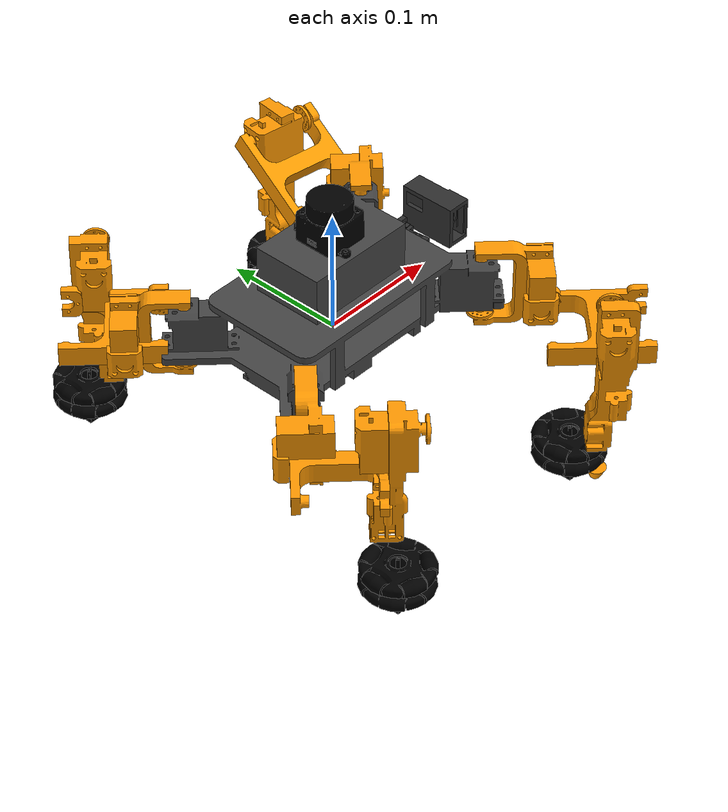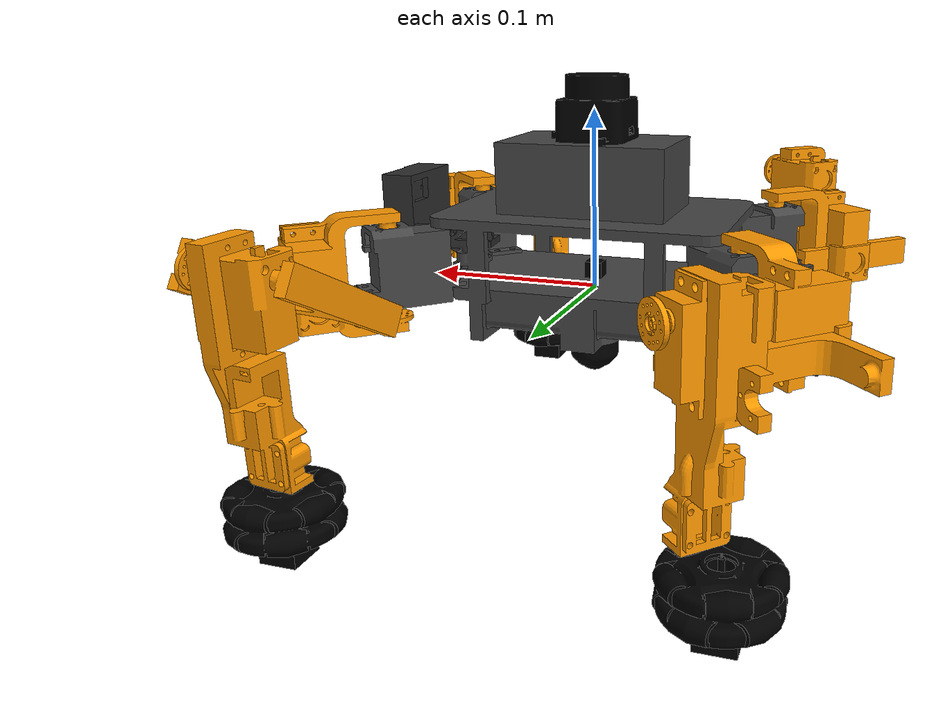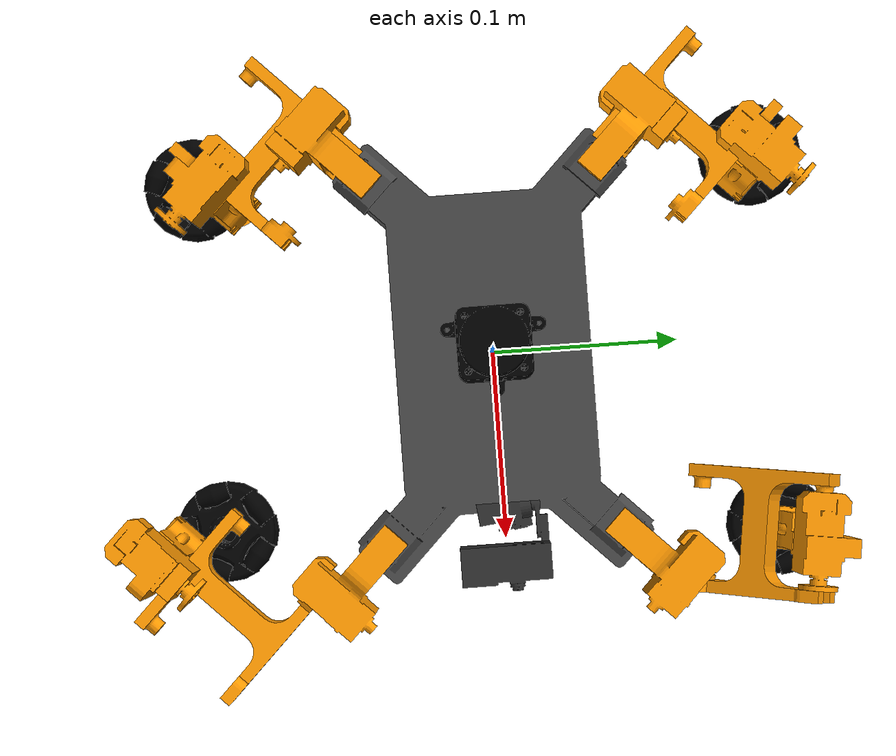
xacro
<?xml version="1.0"?>
<robot xmlns:xacro="http://www.ros.org/wiki/xacro" name="peter_robot">

    <!-- Modelo y Controlador -->
    <xacro:include filename="peter.urdf" />
    <xacro:include filename="peter_control_plugin.xacro" />
    <xacro:include filename="peter_colors.xacro"/>

    <!-- CAMARA -->
    <gazebo reference="Head_y_link">
        <sensor name="camera" type="camera">
            <pose>0 0 0 0 0 0</pose>
            <update_rate>30</update_rate>
            <camera>
                <horizontal_fov>1.047</horizontal_fov>
                <image>
                    <width>640</width>
                    <height>480</height>
                    <format>R8G8B8</format>
                </image>
                <clip>
                    <near>0.1</near>
                    <far>8.0</far>
                </clip>
            </camera>
            <always_on>true</always_on>
            <visualize>true</visualize>
            <topic>/camera/image_raw</topic>
        </sensor>
    </gazebo>

    <!-- IMU -->
    <gazebo reference="imu_link">
        <sensor name="imu_sensor" type="imu">
            <pose>0 0 0 0 0 0</pose>
            <update_rate>100</update_rate>
            <imu>
                <angular_velocity>
                    <noise>
                        <type>gaussian</type>
                        <mean>0.0</mean>
                        <stddev>0.02</stddev>
                    </noise>
                </angular_velocity>
                <linear_acceleration>
                    <noise>
                        <type>gaussian</type>
                        <mean>0.0</mean>
                        <stddev>0.02</stddev>
                    </noise>
                </linear_acceleration>
            </imu>
            <always_on>true</always_on>
            <visualize>true</visualize>
            <topic>/imu/data</topic>
        </sensor>
    </gazebo>

    <!-- LIDAR -->
    <gazebo reference="lidar_link">
        <material>Gazebo/Black</material>

        <sensor name="laser" type="gpu_lidar">
            <pose> 0 0 0 0 0 0 </pose>
            <visualize>false</visualize>
            <update_rate>10</update_rate>
            <lidar>
                <scan>
                    <horizontal>
                        <samples>360</samples>
                        <min_angle>-3.14</min_angle>
                        <max_angle>3.14</max_angle>
                    </horizontal>
                </scan>
                <range>
                    <min>0.3</min>
                    <max>12</max>
                </range>
            </lidar>
            <topic>scan</topic>
            <gz_frame_id>laser_frame</gz_frame_id>
        </sensor>
    </gazebo>

    <!-- Bumper Sensor RU -->
    <gazebo reference="BumperRU_link">
        <sensor name="bumper_TibiaRU" type="contact">
        <pose>0 0 0 0 0 0</pose>
        <update_rate>50</update_rate>
        <contact>
            <collision>BumperRU_link_collision</collision>
        </contact>
        <always_on>true</always_on>
        <visualize>true</visualize>
        <topic>/bumper/TibiaRU</topic>
        </sensor>
    </gazebo>

    <!-- Bumper Sensor RD -->
    <gazebo reference="BumperRD_link">
        <sensor name="bumper_TibiaRD" type="contact">
        <pose>0 0 0 0 0 0</pose>
        <update_rate>50</update_rate>
        <contact>
            <collision>BumperRD_link_collision</collision>
        </contact>
        <always_on>true</always_on>
        <visualize>true</visualize>
        <topic>/bumper/TibiaRD</topic>
        </sensor>
    </gazebo>

    <!-- Bumper Sensor LU -->
    <gazebo reference="BumperLU_link">
        <sensor name="bumper_TibiaLU" type="contact">
        <pose>0 0 0 0 0 0</pose>
        <update_rate>50</update_rate>
        <contact>
            <collision>BumperLU_link_collision</collision>
        </contact>
        <always_on>true</always_on>
        <visualize>true</visualize>
        <topic>/bumper/TibiaLU</topic>
        </sensor>
    </gazebo>

    <!-- Bumper Sensor LD -->
    <gazebo reference="BumperLD_link">
        <sensor name="bumper_TibiaLD" type="contact">
        <pose>0 0 0 0 0 0</pose>
        <update_rate>50</update_rate>
        <contact>
            <collision>BumperLD_link_collision</collision>
        </contact>
        <always_on>true</always_on>
        <visualize>true</visualize>
        <topic>/bumper/TibiaLD</topic>
        </sensor>
    </gazebo>

</robot>

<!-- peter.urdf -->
<robot name="Peter_3.0_completo" xmlns:xacro="http://www.ros.org/wiki/xacro">

  <xacro:include filename="peter_colors.xacro"/>

  <!-- MATERIALES -->

  <material name="base_color">
    <color rgba="${base_color}"/>
    <specular rgba="${specular}" />
    <shininess>${shininess}</shininess>
  </material>

  <material name="coxis_color">
    <color rgba="${coxis_color}"/>
    <specular rgba="${specular}" />
    <shininess>${shininess}</shininess>
  </material>

  <material name="femur_color">
    <color rgba="${femur_color}"/>
    <specular rgba="${specular}" />
    <shininess>${shininess}</shininess>
  </material>

  <material name="tibia_color">
    <color rgba="${tibia_color}"/>
    <specular rgba="${specular}" />
    <shininess>${shininess}</shininess>
  </material>

  <material name="rueda_color">
    <color rgba="${rueda_color}"/>
    <specular rgba="${specular}" />
    <shininess>${shininess}</shininess>
  </material>

  <material name="sensor_color">
    <color rgba="${sensor_color}"/>
    <specular rgba="${specular}" />
    <shininess>${shininess}</shininess>
  </material>

  <material name="headz_color">
    <color rgba="${headz_color}"/>
    <specular rgba="${specular}" />
    <shininess>${shininess}</shininess>
  </material>

  <material name="heady_color">
    <color rgba="${heady_color}"/>
    <specular rgba="${specular}" />
    <shininess>${shininess}</shininess>
  </material>

  <!-- Base Link -->
  <link name="base_link">
    <visual>
      <origin
        xyz="0 0 0"
        rpy="0 0 0" />
      <geometry>
        <mesh
          filename="file://$(find peter_robot)/meshes/base_link.STL" />
      </geometry>
      <material name="base_color"/>
    </visual>
    <collision>
      <origin
        xyz="0 0 0"
        rpy="0 0 0" />
      <geometry>
        <mesh
          filename="file://$(find peter_robot)/meshes/base_link.STL" />
      </geometry>
    </collision>
  </link>

  <!-- IMU -->
  <link name="imu_link">
      <inertial>
          <mass value="0.1"/>  <!-- Masa del IMU -->
          <origin xyz="0 0 0" rpy="0 0 0"/>
          <inertia ixx="0.001" ixy="0" ixz="0" iyy="0.001" iyz="0" izz="0.001"/>
      </inertial>
      <visual>
          <origin xyz="0 0 0" rpy="0 0 0"/>
          <geometry>
              <box size="0.01 0.01 0.01"/>  <!-- Tamaño del IMU -->
          </geometry>
          <material name="sensor_color"/>
      </visual>
      <collision>
          <origin xyz="0 0 0" rpy="0 0 0"/>
          <geometry>
              <box size="0.01 0.01 0.01"/>
          </geometry>
      </collision>
  </link>

  <joint name="imu_joint" type="fixed">
      <parent link="base_link"/>
      <child link="imu_link"/>
      <origin xyz="0 0 0.01" rpy="0 0 0"/>  <!-- Posición relativa al base_link -->
  </joint>

  <!-- LIDAR -->
  <link name="lidar_link">
    <inertial>
      <origin
        xyz="9.81087993409124E-05 7.85641738580093E-05 -0.0107757447995264"
        rpy="0 0 0" />
      <mass
        value="0.0120321644827466" />
      <inertia
        ixx="2.21429850902999E-06"
        ixy="-3.38753438526488E-08"
        ixz="4.84631029572256E-09"
        iyy="2.13896937374521E-06"
        iyz="4.19024170674008E-09"
        izz="3.87805341770386E-06" />
    </inertial>
    <visual>
      <origin
        xyz="0 0 0"
        rpy="0 0 0" />
      <geometry>
        <mesh
          filename="file://$(find peter_robot)/meshes/lidar_link.STL" />
      </geometry>
      <material name="sensor_color"/>
    </visual>
    <collision>
      <origin
        xyz="0 0 0"
        rpy="0 0 0" />
      <geometry>
        <mesh
          filename="file://$(find peter_robot)/meshes/lidar_link.STL" />
      </geometry>
    </collision>
  </link>

  <joint name="lidar_joint"
    type="fixed">
    <origin
      xyz="-0.00184471327732116 0.000713667734151305 0.105999997"
      rpy="0 0 0" />
    <parent
      link="base_link" />
    <child
      link="lidar_link" />
    <axis
      xyz="0 0 0" />
  </joint>

  <!-- Rueda Loca -->
  <link name="RuedaL_link">
    <inertial>
      <origin
        xyz="-2.60208521396521E-17 -9.9370392335256E-05 0"
        rpy="0 0 0" />
      <mass
        value="0.00478152125784282" />
      <inertia
        ixx="2.26061761156593E-07"
        ixy="-3.24514646395537E-23"
        ixz="-1.66132506534916E-09"
        iyy="2.88691178201328E-07"
        iyz="2.65663240724322E-23"
        izz="2.51562599444592E-07" />
    </inertial>
    <visual>
      <origin
        xyz="0 0 0"
        rpy="0 0 0" />
      <geometry>
        <mesh
          filename="file://$(find peter_robot)/meshes/RuedaL_link.STL" />
      </geometry>
      <material name="sensor_color"/>
    </visual>
    <collision>
      <origin
        xyz="0 0 0"
        rpy="0 0 0" />
      <geometry>
        <mesh
          filename="file://$(find peter_robot)/meshes/RuedaL_link.STL" />
      </geometry>
    </collision>
  </link>

  <joint name="RuedaL_joint"
    type="fixed">
    <origin
      xyz="0.000748623602797038 -0.000383625542274181 -0.0396066754484228"
      rpy="1.5707963267949 0 1.5707963267949" />
    <parent
      link="base_link" />
    <child
      link="RuedaL_link" />
    <axis
      xyz="0 0 0" />
  </joint>

  <!-- Articulacion RU -->
  <link name="CoxisRU_link">
    <inertial>
      <origin
        xyz="0.0373077431929926 0.00344959291142 -0.0260561545125268"
        rpy="0 0 0" />
      <mass
        value="0.0515847056526637" />
      <inertia
        ixx="1.79650415378127E-05"
        ixy="2.19189489331081E-07"
        ixz="-3.89806580766387E-07"
        iyy="1.67946166656814E-05"
        iyz="2.74340446871527E-08"
        izz="8.76852838608537E-06" />
    </inertial>
    <visual>
      <origin
        xyz="0 0 0"
        rpy="0 0 0" />
      <geometry>
        <mesh
          filename="file://$(find peter_robot)/meshes/CoxisRU_link.STL" />
      </geometry>
      <material name="coxis_color"/>
    </visual>
    <collision>
      <origin
        xyz="0 0 0"
        rpy="0 0 0" />
      <geometry>
        <mesh
          filename="file://$(find peter_robot)/meshes/CoxisRU_link.STL" />
      </geometry>
    </collision>
  </link>

  <joint name="CoxisRU_joint"
    type="revolute">
    <origin
      xyz="0.096588 -0.060798 -0.0098"
      rpy="3.1416 0 -1.5708" />
    <parent
      link="base_link" />
    <child
      link="CoxisRU_link" />
    <axis
      xyz="0 0 -1" />
    <limit
      lower="-2"
      upper="1.57"
      effort="200"
      velocity="200" />
  </joint>

  <link name="FemurRU_link">
    <inertial>
      <origin
        xyz="0.0280298419372188 0.0170017130022575 0.02801029353359"
        rpy="0 0 0" />
      <mass
        value="0.0322370098830192" />
      <inertia
        ixx="2.36008175448379E-05"
        ixy="-4.09665216602853E-06"
        ixz="6.42984550158153E-07"
        iyy="2.84230373430453E-05"
        iyz="-2.10801430812595E-07"
        izz="1.11394349051176E-05" />
    </inertial>
    <visual>
      <origin
        xyz="0 0 0"
        rpy="0 0 0" />
      <geometry>
        <mesh
          filename="file://$(find peter_robot)/meshes/FemurRU_link.STL" />
      </geometry>
      <material name="femur_color"/>
    </visual>
    <collision>
      <origin
        xyz="0 0 0"
        rpy="0 0 0" />
      <geometry>
        <mesh
          filename="file://$(find peter_robot)/meshes/FemurRU_link.STL" />
      </geometry>
    </collision>
  </link>

  <joint name="FemurRU_joint"
    type="revolute">
    <origin
      xyz="0.045319 -0.0237 -0.015752"
      rpy="-1.5708 0 0" />
    <parent
      link="CoxisRU_link" />
    <child
      link="FemurRU_link" />
    <axis
      xyz="0.051392 0 -0.99868" />
    <limit
      lower="-2.0"
      upper="2.8"
      effort="200"
      velocity="200" />
  </joint>

  <link name="TibiaRU_link">
    <inertial>
      <origin
        xyz="0.031935634614015 -0.00117480253668045 0.0271788159536916"
        rpy="0 0 0" />
      <mass
        value="0.0667714115678162" />
      <inertia
        ixx="8.95236989231644E-06"
        ixy="2.06887932736198E-06"
        ixz="-7.18730831835981E-07"
        iyy="2.31375408714948E-05"
        iyz="3.25313377933762E-07"
        izz="2.07987476859839E-05" />
    </inertial>
    <visual>
      <origin
        xyz="0 0 0"
        rpy="0 0 0" />
      <geometry>
        <mesh
          filename="file://$(find peter_robot)/meshes/TibiaRU_link.STL" />
      </geometry>
      <material name="tibia_color"/>
    </visual>
    <collision>
      <origin
        xyz="0 0 0"
        rpy="0 0 0" />
      <geometry>
        <mesh
          filename="file://$(find peter_robot)/meshes/TibiaRU_link.STL" />
      </geometry>
    </collision>
  </link>

  <joint name="TibiaRU_joint"
    type="revolute">
    <origin
      xyz="0.06042 0.034948 0.0031092"
      rpy="0 0 -1.5708" />
    <parent
      link="FemurRU_link" />
    <child
      link="TibiaRU_link" />
    <axis
      xyz="0 -0.051392 0.99868" />
    <limit
      lower="-0.43"
      upper="2.7"
      effort="200"
      velocity="200" />
  </joint>

  <link name="RuedaRU_link">
    <inertial>
      <origin
        xyz="0.000199918139693445 -0.000341992268436508 0.00959253134125242"
        rpy="0 0 0" />
      <mass
        value="0.0410439694665572" />
      <inertia
        ixx="5.18020756884856E-06"
        ixy="-3.6759683835391E-11"
        ixz="-3.33131962692676E-10"
        iyy="5.18026347204049E-06"
        iyz="7.3064402727003E-09"
        izz="9.73024429450851E-06" />
    </inertial>
    <visual>
      <origin
        xyz="0 0 0"
        rpy="0 0 0" />
      <geometry>
        <mesh
          filename="file://$(find peter_robot)/meshes/RuedaRU_link.STL" />
      </geometry>
      <material name="rueda_color"/>
    </visual>
    <collision>
      <origin
        xyz="0 0 0"
        rpy="0 0 0" />
      <geometry>
        <mesh
          filename="file://$(find peter_robot)/meshes/RuedaRU_link.STL" />
      </geometry>
    </collision>
  </link>

  <joint name="RuedaRU_joint"
    type="continuous">
    <origin
      xyz="0.109539977240268 -0.0076711055817173 0.0283762200987518"
      rpy="0 1.5707963267949 0" />
    <parent
      link="TibiaRU_link" />
    <child
      link="RuedaRU_link" />
    <axis
      xyz="8.35837727566709E-05 -0.00162426112226136 -0.999998677393905" />
  </joint>

  <!-- Bumper Sensor RU -->
  <link name="BumperRU_link">
    <inertial>
      <mass value="0.001"/>  <!-- Ajusta la masa según sea necesario -->
      <inertia ixx="0.001" iyy="0.001" izz="0.001" ixy="0" ixz="0" iyz="0"/>
    </inertial>

    <visual>
      <origin xyz="0 0 0" rpy="0 0 0"/>
      <geometry>
        <box size="0.01 0.02 0.02"/>  <!-- Tamaño del nuevo link -->
      </geometry>
      <material name="sensor_color"/>
    </visual>

    <collision>
      <origin xyz="0 0 0" rpy="0 0 0"/>
      <geometry>
        <box size="0.01 0.02 0.02"/>  <!-- Coincide con el visual -->
      </geometry>
    </collision>
  </link>

  <joint name="BumperRU_joint" type="revolute">
    <parent link="TibiaRU_link"/>
    <child link="BumperRU_link"/>
    <origin xyz="0.14 -0.0076711055817173 0.0283762200987518" rpy="0 0 0"/>
    <axis xyz="0 0 1"/>
    <limit lower="0" upper="0" effort="0" velocity="0"/>
  </joint>

  <!-- Articulacion RD -->
  <link name="CoxisRD_link">
    <inertial>
      <origin
        xyz="0.0369651813320451 0.00583094163920361 -0.026056041542807"
        rpy="0 0 0" />
      <mass
        value="0.0515847017813385" />
      <inertia
        ixx="1.79305674043856E-05"
        ixy="2.95303067672398E-07"
        ixz="-3.90881428846353E-07"
        iyy="1.68290863383272E-05"
        iyz="1.29882473297429E-09"
        izz="8.76852676058606E-06" />
    </inertial>
    <visual>
      <origin
        xyz="0 0 0"
        rpy="0 0 0" />
      <geometry>
        <mesh
          filename="file://$(find peter_robot)/meshes/CoxisRD_link.STL" />
      </geometry>
      <material name="coxis_color"/>
    </visual>
    <collision>
      <origin
        xyz="0 0 0"
        rpy="0 0 0" />
      <geometry>
        <mesh
          filename="file://$(find peter_robot)/meshes/CoxisRD_link.STL" />
      </geometry>
    </collision>
  </link>

  <joint name="CoxisRD_joint"
    type="revolute">
    <origin
      xyz="-0.09323 -0.060798 -0.0098"
      rpy="3.1416 0 -1.5708" />
    <parent
      link="base_link" />
    <child
      link="CoxisRD_link" />
    <axis
      xyz="0 0 -1" />
    <limit
      lower="-2"
      upper="1.57"
      effort="200"
      velocity="200" />
  </joint>

  <link name="FemurRD_link">
    <inertial>
      <origin
        xyz="0.0243105159422555 0.019893023342338 0.0296094490036057"
        rpy="0 0 0" />
      <mass
        value="0.0322370091635994" />
      <inertia
        ixx="2.43340126263056E-05"
        ixy="-4.47276103623778E-06"
        ixz="1.57243402408369E-06"
        iyy="2.75360075262037E-05"
        iyz="-5.31676553996605E-07"
        izz="1.12932677467744E-05" />
    </inertial>
    <visual>
      <origin
        xyz="0 0 0"
        rpy="0 0 0" />
      <geometry>
        <mesh
          filename="file://$(find peter_robot)/meshes/FemurRD_link.STL" />
      </geometry>
      <material name="femur_color"/>
    </visual>
    <collision>
      <origin
        xyz="0 0 0"
        rpy="0 0 0" />
      <geometry>
        <mesh
          filename="file://$(find peter_robot)/meshes/FemurRD_link.STL" />
      </geometry>
    </collision>
  </link>

  <joint name="FemurRD_joint"
    type="revolute">
    <origin
      xyz="0.046773 -0.020724 -0.015752"
      rpy="-1.5708 0 0" />
    <parent
      link="CoxisRD_link" />
    <child
      link="FemurRD_link" />
    <axis
      xyz="0.11804 0 -0.99301" />
    <limit
      lower="-0.35"
      upper="2.8"
      effort="200"
      velocity="200" />
  </joint>

  <link name="TibiaRD_link">
    <inertial>
      <origin
        xyz="0.0318290954932926 -0.000613422978720496 0.0273218841045819"
        rpy="0 0 0" />
      <mass
        value="0.0667714118308176" />
      <inertia
        ixx="8.72891309208237E-06"
        ixy="1.03660790964968E-06"
        ixz="-7.19709509744778E-07"
        iyy="2.33186432286234E-05"
        iyz="4.4401514010959E-07"
        izz="2.08411022697644E-05" />
    </inertial>
    <visual>
      <origin
        xyz="0 0 0"
        rpy="0 0 0" />
      <geometry>
        <mesh
          filename="file://$(find peter_robot)/meshes/TibiaRD_link.STL" />
      </geometry>
      <material name="tibia_color"/>
    </visual>
    <collision>
      <origin
        xyz="0 0 0"
        rpy="0 0 0" />
      <geometry>
        <mesh
          filename="file://$(find peter_robot)/meshes/TibiaRD_link.STL" />
      </geometry>
    </collision>
  </link>

  <joint name="TibiaRD_joint"
    type="revolute">
    <origin
      xyz="0.056409 0.040891 0.0067056"
      rpy="0 0 -1.5708" />
    <parent
      link="FemurRD_link" />
    <child
      link="TibiaRD_link" />
    <axis
      xyz="0 -0.11804 0.99301" />
    <limit
      lower="-0.43"
      upper="2.7"
      effort="200"
      velocity="200" />
  </joint>

  <link name="RuedaRD_link">
    <inertial>
      <origin
        xyz="0.000137366855968102 0.00038691380318942 0.00959192439896971"
        rpy="0 0 0" />
      <mass
        value="0.0410439698241763" />
      <inertia
        ixx="5.180583164812E-06"
        ixy="-3.15989384518624E-09"
        ixz="-4.09423877593772E-08"
        iyy="5.20653033968535E-06"
        iyz="3.44804654363157E-07"
        izz="9.70360182547316E-06" />
    </inertial>
    <visual>
      <origin
        xyz="0 0 0"
        rpy="0 0 0" />
      <geometry>
        <mesh
          filename="file://$(find peter_robot)/meshes/RuedaRD_link.STL" />
      </geometry>
      <material name="rueda_color"/>
    </visual>
    <collision>
      <origin
        xyz="0 0 0"
        rpy="0 0 0" />
      <geometry>
        <mesh
          filename="file://$(find peter_robot)/meshes/RuedaRD_link.STL" />
      </geometry>
    </collision>
  </link>

  <joint name="RuedaRD_joint"
    type="continuous">
    <origin
      xyz="0.109696793417255 -0.00138265547481653 0.0287708901417234"
      rpy="0 1.5707963267949 0" />
    <parent
      link="TibiaRD_link" />
    <child
      link="RuedaRD_link" />
    <axis
      xyz="0.00903692524308548 -0.0760217790170896 -0.997065205037879" />
  </joint>

  <!-- Bumper Sensor RD -->
  <link name="BumperRD_link">
    <inertial>
      <mass value="0.001"/>  <!-- Ajusta la masa según sea necesario -->
      <inertia ixx="0.001" iyy="0.001" izz="0.001" ixy="0" ixz="0" iyz="0"/>
    </inertial>

    <visual>
      <origin xyz="0 0 0" rpy="0 0 0"/>
      <geometry>
        <box size="0.01 0.02 0.02"/>  <!-- Tamaño del nuevo link -->
      </geometry>
      <material name="sensor_color"/>
    </visual>

    <collision>
      <origin xyz="0 0 0" rpy="0 0 0"/>
      <geometry>
        <box size="0.01 0.02 0.02"/>  <!-- Coincide con el visual -->
      </geometry>
    </collision>
  </link>

  <joint name="BumperRD_joint" type="revolute">
    <parent link="TibiaRD_link"/>
    <child link="BumperRD_link"/>
    <origin xyz= "0.14 -0.00138265547481653 0.0287708901417234" rpy="0 0 0"/>
    <axis xyz="0 0 1"/>
    <limit lower="0" upper="0" effort="0" velocity="0"/>
  </joint>

  <!-- Articulacion LU -->
  <link name="CoxisLU_link">
    <inertial>
      <origin
        xyz="0.0371090998945719 0.00406660736411779 -0.026056041382869"
        rpy="0 0 0" />
      <mass
        value="0.0515847042228037" />
      <inertia
        ixx="1.80043315016589E-05"
        ixy="2.27849133405711E-08"
        ixz="-3.76963325270919E-07"
        iyy="1.67553243896817E-05"
        iyz="-1.03391784551128E-07"
        izz="8.7685284154472E-06" />
    </inertial>
    <visual>
      <origin
        xyz="0 0 0"
        rpy="0 0 0" />
      <geometry>
        <mesh
          filename="file://$(find peter_robot)/meshes/CoxisLU_link.STL" />
      </geometry>
      <material name="coxis_color"/>
    </visual>
    <collision>
      <origin
        xyz="0 0 0"
        rpy="0 0 0" />
      <geometry>
        <mesh
          filename="file://$(find peter_robot)/meshes/CoxisLU_link.STL" />
      </geometry>
    </collision>
  </link>

  <joint name="CoxisLU_joint"
    type="revolute">
    <origin
      xyz="0.096588 0.060798 -0.0098"
      rpy="-3.1416 0 1.5708" />
    <parent
      link="base_link" />
    <child
      link="CoxisLU_link" />
    <axis
      xyz="0 0 -1" />
    <limit
      lower="-1.57"
      upper="2"
      effort="200"
      velocity="200" />
  </joint>

  <link name="FemurLU_link">
    <inertial>
      <origin
        xyz="0.0333715729504286 0.0164235694898136 -0.0219103354014472"
        rpy="0 0 0" />
      <mass
        value="0.0322370074530517" />
      <inertia
        ixx="2.32264419710372E-05"
        ixy="-3.9710068084551E-06"
        ixz="1.78248483249396E-06"
        iyy="2.85683505569246E-05"
        iyz="-5.83986524251586E-07"
        izz="1.13684911251401E-05" />
    </inertial>
    <visual>
      <origin
        xyz="0 0 0"
        rpy="0 0 0" />
      <geometry>
        <mesh
          filename="file://$(find peter_robot)/meshes/FemurLU_link.STL" />
      </geometry>
      <material name="femur_color"/>
    </visual>
    <collision>
      <origin
        xyz="0 0 0"
        rpy="0 0 0" />
      <geometry>
        <mesh
          filename="file://$(find peter_robot)/meshes/FemurLU_link.STL" />
      </geometry>
    </collision>
  </link>

  <joint name="FemurLU_joint"
    type="revolute">
    <origin
      xyz="0.039628 0.032261 -0.015752"
      rpy="-1.5708 0 0" />
    <parent
      link="CoxisLU_link" />
    <child
      link="FemurLU_link" />
    <axis
      xyz="-0.1455 0 0.98936" />
    <limit
      lower="-2.8"
      upper="0.35"
      effort="200"
      velocity="200" />
  </joint>

  <link name="TibiaLU_link">
    <inertial>
      <origin
        xyz="0.0318285849841624 0.00339153923520577 -0.0270076360976863"
        rpy="0 0 0" />
      <mass
        value="0.0667476310976818" />
      <inertia
        ixx="9.09397961908622E-06"
        ixy="2.33030237960494E-06"
        ixz="1.07661256560995E-06"
        iyy="2.3417647902328E-05"
        iyz="1.1103216710962E-07"
        izz="2.10737330891965E-05" />
    </inertial>
    <visual>
      <origin
        xyz="0 0 0"
        rpy="0 0 0" />
      <geometry>
        <mesh
          filename="file://$(find peter_robot)/meshes/TibiaLU_link.STL" />
      </geometry>
      <material name="tibia_color"/>
    </visual>
    <collision>
      <origin
        xyz="0 0 0"
        rpy="0 0 0" />
      <geometry>
        <mesh
          filename="file://$(find peter_robot)/meshes/TibiaLU_link.STL" />
      </geometry>
    </collision>
  </link>

  <joint name="TibiaLU_joint"
    type="revolute">
    <origin
      xyz="0.060661 0.033759 0.0089212"
      rpy="0 0 -1.5708" />
    <parent
      link="FemurLU_link" />
    <child
      link="TibiaLU_link" />
    <axis
      xyz="0 0.1455 -0.98936" />
    <limit
      lower="-2.7"
      upper="0.43"
      effort="200"
      velocity="200" />
  </joint>

  <link name="RuedaLU_link">
    <inertial>
      <origin
        xyz="0.00026569425244416 -0.000555240217366831 0.0095810260446705"
        rpy="0 0 0" />
      <mass
        value="0.0410439695181042" />
      <inertia
        ixx="5.18026609332541E-06"
        ixy="-3.87903181233704E-10"
        ixz="1.52805950539571E-08"
        iyy="5.18260531789493E-06"
        iyz="-1.03614195931657E-07"
        izz="9.72784392317155E-06" />
    </inertial>
    <visual>
      <origin
        xyz="0 0 0"
        rpy="0 0 0" />
      <geometry>
        <mesh
          filename="file://$(find peter_robot)/meshes/RuedaLU_link.STL" />
      </geometry>
      <material name="rueda_color"/>
    </visual>
    <collision>
      <origin
        xyz="0 0 0"
        rpy="0 0 0" />
      <geometry>
        <mesh
          filename="file://$(find peter_robot)/meshes/RuedaLU_link.STL" />
      </geometry>
    </collision>
  </link>

  <joint name="RuedaLU_joint"
    type="continuous">
    <origin
      xyz="0.109353047449084 -0.00459051118128878 -0.0302190306176173"
      rpy="0 1.5707963267949 0" />
    <parent
      link="TibiaLU_link" />
    <child
      link="RuedaLU_link" />
    <axis
      xyz="-0.0033473808290709 0.0227609837826761 -0.999735331304656" />
  </joint>

  <!-- Bumper Sensor LU -->
  <link name="BumperLU_link">
    <inertial>
      <mass value="0.001"/>  <!-- Ajusta la masa según sea necesario -->
      <inertia ixx="0.001" iyy="0.001" izz="0.001" ixy="0" ixz="0" iyz="0"/>
    </inertial>

    <visual>
      <origin xyz="0 0 0" rpy="0 0 0"/>
      <geometry>
        <box size="0.01 0.02 0.02"/>  <!-- Tamaño del nuevo link -->
      </geometry>
      <material name="sensor_color"/>
    </visual>

    <collision>
      <origin xyz="0 0 0" rpy="0 0 0"/>
      <geometry>
        <box size="0.01 0.02 0.02"/>  <!-- Coincide con el visual -->
      </geometry>
    </collision>
  </link>

  <joint name="BumperLU_joint" type="revolute">
    <parent link="TibiaLU_link"/>
    <child link="BumperLU_link"/>
    <origin xyz= "0.14 -0.00459051118128878 -0.0302190306176173" rpy="0 0 0"/>
    <axis xyz="0 0 1"/>
    <limit lower="0" upper="0" effort="0" velocity="0"/>
  </joint>

  <!-- Articulacion LD -->
  <link name="CoxisLD_link">
    <inertial>
      <origin
        xyz="0.0370615210393103 -0.0052408639190108 -0.0260561571124523"
        rpy="0 0 0" />
      <mass
        value="0.0515847132031574" />
      <inertia
        ixx="1.79397160808874E-05"
        ixy="-2.77581758447214E-07"
        ixz="-3.90701690343145E-07"
        iyy="1.68199518967991E-05"
        iyz="-7.56173523280061E-09"
        izz="8.76853285208694E-06" />
    </inertial>
    <visual>
      <origin
        xyz="0 0 0"
        rpy="0 0 0" />
      <geometry>
        <mesh
          filename="file://$(find peter_robot)/meshes/CoxisLD_link.STL" />
      </geometry>
      <material name="coxis_color"/>
    </visual>
    <collision>
      <origin
        xyz="0 0 0"
        rpy="0 0 0" />
      <geometry>
        <mesh
          filename="file://$(find peter_robot)/meshes/CoxisLD_link.STL" />
      </geometry>
    </collision>
  </link>

  <joint name="CoxisLD_joint"
    type="revolute">
    <origin
      xyz="-0.09323 0.060798 -0.0098"
      rpy="-3.1416 0 1.5708" />
    <parent
      link="base_link" />
    <child
      link="CoxisLD_link" />
    <axis
      xyz="0 0 -1" />
    <limit
      lower="-1.13"
      upper="2"
      effort="200"
      velocity="200" />
  </joint>

  <link name="FemurLD_link">
    <inertial>
      <origin
        xyz="0.027774514363455 0.0148424282723142 -0.0295251014295534"
        rpy="0 0 0" />
      <mass
        value="0.0322370081893243" />
      <inertia
        ixx="2.29585271907002E-05"
        ixy="-3.70722182368232E-06"
        ixz="-1.21736686442898E-06"
        iyy="2.89733751972465E-05"
        iyz="3.80755988407062E-07"
        izz="1.12313831751207E-05" />
    </inertial>
    <visual>
      <origin
        xyz="0 0 0"
        rpy="0 0 0" />
      <geometry>
        <mesh
          filename="file://$(find peter_robot)/meshes/FemurLD_link.STL" />
      </geometry>
      <material name="femur_color"/>
    </visual>
    <collision>
      <origin
        xyz="0 0 0"
        rpy="0 0 0" />
      <geometry>
        <mesh
          filename="file://$(find peter_robot)/meshes/FemurLD_link.STL" />
      </geometry>
    </collision>
  </link>

  <joint name="FemurLD_joint"
    type="revolute">
    <origin
      xyz="0.046435 0.021468 -0.015752"
      rpy="-1.5708 0 0" />
    <parent
      link="CoxisLD_link" />
    <child
      link="FemurLD_link" />
    <axis
      xyz="0.10217 0 0.99477" />
    <limit
      lower="-2.8"
      upper="0.35"
      effort="200"
      velocity="200" />
  </joint>

  <link name="TibiaLD_link">
    <inertial>
      <origin
        xyz="0.0318214746065825 -0.00366034607728369 -0.0269809078569606"
        rpy="0 0 0" />
      <mass
        value="0.0667476309214474" />
      <inertia
        ixx="9.14334330424273E-06"
        ixy="2.66148535396861E-06"
        ixz="4.54250835843257E-07"
        iyy="2.32786333846721E-05"
        iyz="-4.62803502676568E-07"
        izz="2.11633838325117E-05" />
    </inertial>
    <visual>
      <origin
        xyz="0 0 0"
        rpy="0 0 0" />
      <geometry>
        <mesh
          filename="file://$(find peter_robot)/meshes/TibiaLD_link.STL" />
      </geometry>
      <material name="tibia_color"/>
    </visual>
    <collision>
      <origin
        xyz="0 0 0"
        rpy="0 0 0" />
      <geometry>
        <mesh
          filename="file://$(find peter_robot)/meshes/TibiaLD_link.STL" />
      </geometry>
    </collision>
  </link>

  <joint name="TibiaLD_joint"
    type="revolute">
    <origin
      xyz="0.062664 0.030509 -0.0064363"
      rpy="0 0 -1.5708" />
    <parent
      link="FemurLD_link" />
    <child
      link="TibiaLD_link" />
    <axis
      xyz="0 -0.10217 -0.99477" />
    <limit
      lower="-2.7"
      upper="0.43"
      effort="200"
      velocity="200" />
  </joint>

  <link name="RuedaLD_link">
    <inertial>
      <origin
        xyz="0.000111508335068344 -0.000696404011482465 0.00957483850452766"
        rpy="0 0 0" />
      <mass
        value="0.0410439695671941" />
      <inertia
        ixx="5.18024833823711E-06"
        ixy="4.67422857029879E-10"
        ixz="-1.51847380388351E-08"
        iyy="5.18509703141255E-06"
        iyz="-1.48247481258464E-07"
        izz="9.72536996425234E-06" />
    </inertial>
    <visual>
      <origin
        xyz="0 0 0"
        rpy="0 0 0" />
      <geometry>
        <mesh
          filename="file://$(find peter_robot)/meshes/RuedaLD_link.STL" />
      </geometry>
      <material name="rueda_color"/>
    </visual>
    <collision>
      <origin
        xyz="0 0 0"
        rpy="0 0 0" />
      <geometry>
        <mesh
          filename="file://$(find peter_robot)/meshes/RuedaLD_link.STL" />
      </geometry>
    </collision>
  </link>

  <joint name="RuedaLD_joint"
    type="continuous">
    <origin
      xyz="0.10926 -0.012938 -0.028054"
      rpy="0 1.5708 0" />
    <parent
      link="TibiaLD_link" />
    <child
      link="RuedaLD_link" />
    <axis
      xyz="0.0033463 0.03258 -0.99946" />
  </joint>

  <!-- Bumper Sensor LD -->
  <link name="BumperLD_link">
    <inertial>
      <mass value="0.001"/>  <!-- Ajusta la masa según sea necesario -->
      <inertia ixx="0.001" iyy="0.001" izz="0.001" ixy="0" ixz="0" iyz="0"/>
    </inertial>

    <visual>
      <origin xyz="0 0 0" rpy="0 0 0"/>
      <geometry>
        <box size="0.01 0.02 0.02"/>  <!-- Tamaño del nuevo link -->
      </geometry>
      <material name="sensor_color"/>
    </visual>

    <collision>
      <origin xyz="0 0 0" rpy="0 0 0"/>
      <geometry>
        <box size="0.01 0.02 0.02"/>  <!-- Coincide con el visual -->
      </geometry>
    </collision>
  </link>

  <joint name="BumperLD_joint" type="revolute">
    <parent link="TibiaLD_link"/>
    <child link="BumperLD_link"/>
    <origin xyz= "0.14 -0.012938 -0.028054" rpy="0 0 0"/>
    <axis xyz="0 0 1"/>
    <limit lower="0" upper="0" effort="0" velocity="0"/>
  </joint>

  <!-- HEAD -->
  <link name="Head_z_link">
    <inertial>
      <origin
        xyz="0.00178460148633564 -0.00540790452305463 0.0079769328978645"
        rpy="0 0 0" />
      <mass
        value="0.0103184369301582" />
      <inertia
        ixx="6.03799008240543E-07"
        ixy="-5.74646941196004E-08"
        ixz="1.04136250166302E-09"
        iyy="7.81694409278722E-07"
        iyz="-1.30535317496501E-08"
        izz="1.14580887317675E-06" />
    </inertial>
    <visual>
      <origin
        xyz="0 0 0"
        rpy="0 0 0" />
      <geometry>
        <mesh
          filename="file://$(find peter_robot)/meshes/Head_z_link.STL" />
      </geometry>
      <material name="headz_color"/>
    </visual>
    <collision>
      <origin
        xyz="0 0 0"
        rpy="0 0 0" />
      <geometry>
        <mesh
          filename="file://$(find peter_robot)/meshes/Head_z_link.STL" />
      </geometry>
    </collision>
  </link>

  <joint name="Head_z_joint"
    type="revolute">
    <origin
      xyz="0.077725 0.0055 0.0205"
      rpy="0 0 0" />
    <parent
      link="base_link" />
    <child
      link="Head_z_link" />
    <axis
      xyz="0 0 1" />
    <limit
      lower="-1.57"
      upper="1.57"
      effort="200"
      velocity="200" />
  </joint>

  <link name="Head_y_link">
    <inertial>
      <origin
        xyz="0.0285985652000156 -0.0157988805439243 0.0165845293359016"
        rpy="0 0 0" />
      <mass
        value="0.0163382220637024" />
      <inertia
        ixx="5.1822549216056E-06"
        ixy="3.79870864042615E-07"
        ixz="5.64157454343844E-08"
        iyy="2.78198230437846E-06"
        iyz="1.85983561503811E-07"
        izz="3.70745019487904E-06" />
    </inertial>
    <visual>
      <origin
        xyz="0 0 0"
        rpy="0 0 0" />
      <geometry>
        <mesh
          filename="file://$(find peter_robot)/meshes/Head_y_link.STL" />
      </geometry>
      <material name="heady_color"/>
    </visual>
    <collision>
      <origin
        xyz="0 0 0"
        rpy="0 0 0" />
      <geometry>
        <mesh
          filename="file://$(find peter_robot)/meshes/Head_y_link.STL" />
      </geometry>
    </collision>
  </link>

  <joint name="Head_y_joint"
    type="revolute">
    <origin
      xyz="0.00481057280523833 0.013430874479555 0.00994999999999966"
      rpy="0 0 0" />
    <parent
      link="Head_z_link" />
    <child
      link="Head_y_link" />
    <axis
      xyz="0.113197942878959 -0.993572456204363 0" />
    <limit
      lower="-1.57"
      upper="1.57"
      effort="200"
      velocity="200" />
  </joint>

</robot>

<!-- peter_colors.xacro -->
<robot xmlns:xacro="http://www.ros.org/wiki/xacro" name="peter_robot_c">

    <!-- Definiciones de variables compartidas -->

   <!-- Colores -->
    <xacro:property name="base_color" value="0.27 0.27 0.27 1.0"/>  <!-- Gris metálico más oscuro -->
    <xacro:property name="coxis_color" value="1.0 0.6 0.0 1.0"/>  <!-- Naranja Seguridad -->
    <xacro:property name="femur_color" value="1.0 0.6 0.0 1.0"/>
    <xacro:property name="tibia_color" value="1.0 0.6 0.0 1.0"/>
    <xacro:property name="rueda_color" value="0.0 0.0 0.0 1.0"/>  <!-- Negro mate -->
    <xacro:property name="sensor_color" value="0.0 0.0 0.0 1.0"/>  <!-- Negro mate -->
    <xacro:property name="headz_color" value="0.18 0.18 0.18 1.0"/>
    <xacro:property name="heady_color" value="0.18 0.18 0.18 1.0"/>

    <!-- Texturas -->
    <xacro:property name="specular" value="1.0 1.0 1.0 1"/>
    <xacro:property name="ambient" value="1.0 1.0 1.0 1"/>
    <xacro:property name="shininess" value="150.0"/>
    <xacro:property name="metalness" value="0.3"/>
    <xacro:property name="roughness" value="0.0"/>

    <!-- Base Link -->
    <gazebo reference="base_link">
        <visual>
            <material>
            <ambient>${ambient}</ambient>
            <specular>${specular}</specular>
            <diffuse>${base_color}</diffuse>
            <pbr>
                <metal>
                <metalness>${metalness}</metalness>
                <roughness>${roughness}</roughness>
                </metal>
            </pbr>
            </material>
        </visual>
    </gazebo>

    <!-- IMU -->
    <gazebo reference="imu_link">
        <visual>
            <material>
            <ambient>${ambient}</ambient>
            <specular>${specular}</specular>
            <diffuse>${sensor_color}</diffuse>
            <pbr>
                <metal>
                <metalness>${metalness}</metalness>
                <roughness>${roughness}</roughness>
                </metal>
            </pbr>
            </material>
        </visual>
    </gazebo>

    <!-- LIDAR -->
    <gazebo reference="lidar_link">
        <visual>
            <material>
            <ambient>${ambient}</ambient>
            <specular>${specular}</specular>
            <diffuse>${sensor_color}</diffuse>
            <pbr>
                <metal>
                <metalness>${metalness}</metalness>
                <roughness>${roughness}</roughness>
                </metal>
            </pbr>
            </material>
        </visual>
    </gazebo>

    <!-- Rueda Loca -->
    <gazebo reference="RuedaL_link">
        <visual>
            <material>
            <ambient>${ambient}</ambient>
            <specular>${specular}</specular>
            <diffuse>${sensor_color}</diffuse>
            <pbr>
                <metal>
                <metalness>${metalness}</metalness>
                <roughness>${roughness}</roughness>
                </metal>
            </pbr>
            </material>
        </visual>
    </gazebo>

    <!-- Coxas -->
    <gazebo reference="CoxisRU_link">
        <visual>
            <material>
            <ambient>${ambient}</ambient>
            <specular>${specular}</specular>
            <diffuse>${coxis_color}</diffuse>
            <pbr>
                <metal>
                <metalness>${metalness}</metalness>
                <roughness>${roughness}</roughness>
                </metal>
            </pbr>
            </material>
        </visual>
    </gazebo>

    <gazebo reference="CoxisRD_link">
        <visual>
            <material>
            <ambient>${ambient}</ambient>
            <specular>${specular}</specular>
            <diffuse>${coxis_color}</diffuse>
            <pbr>
                <metal>
                <metalness>${metalness}</metalness>
                <roughness>${roughness}</roughness>
                </metal>
            </pbr>
            </material>
        </visual>
    </gazebo>

    <gazebo reference="CoxisLU_link">
        <visual>
            <material>
            <ambient>${ambient}</ambient>
            <specular>${specular}</specular>
            <diffuse>${coxis_color}</diffuse>
            <pbr>
                <metal>
                <metalness>${metalness}</metalness>
                <roughness>${roughness}</roughness>
                </metal>
            </pbr>
            </material>
        </visual>
    </gazebo>

    <gazebo reference="CoxisLD_link">
        <visual>
            <material>
            <ambient>${ambient}</ambient>
            <specular>${specular}</specular>
            <diffuse>${coxis_color}</diffuse>
            <pbr>
                <metal>
                <metalness>${metalness}</metalness>
                <roughness>${roughness}</roughness>
                </metal>
            </pbr>
            </material>
        </visual>
    </gazebo>

    <!-- Femures -->
    <gazebo reference="FemurRU_link">
        <visual>
            <material>
            <ambient>${ambient}</ambient>
            <specular>${specular}</specular>
            <diffuse>${femur_color}</diffuse>
            <pbr>
                <metal>
                <metalness>${metalness}</metalness>
                <roughness>${roughness}</roughness>
                </metal>
            </pbr>
            </material>
        </visual>
    </gazebo>

    <gazebo reference="FemurRD_link">
        <visual>
            <material>
            <ambient>${ambient}</ambient>
            <specular>${specular}</specular>
            <diffuse>${femur_color}</diffuse>
            <pbr>
                <metal>
                <metalness>${metalness}</metalness>
                <roughness>${roughness}</roughness>
                </metal>
            </pbr>
            </material>
        </visual>
    </gazebo>

    <gazebo reference="FemurLU_link">
        <visual>
            <material>
            <ambient>${ambient}</ambient>
            <specular>${specular}</specular>
            <diffuse>${femur_color}</diffuse>
            <pbr>
                <metal>
                <metalness>${metalness}</metalness>
                <roughness>${roughness}</roughness>
                </metal>
            </pbr>
            </material>
        </visual>
    </gazebo>

    <gazebo reference="FemurLD_link">
        <visual>
            <material>
            <ambient>${ambient}</ambient>
            <specular>${specular}</specular>
            <diffuse>${femur_color}</diffuse>
            <pbr>
                <metal>
                <metalness>${metalness}</metalness>
                <roughness>${roughness}</roughness>
                </metal>
            </pbr>
            </material>
        </visual>
    </gazebo>

    <!-- Tibias -->
    <gazebo reference="TibiaRU_link">
        <visual>
            <material>
            <ambient>${ambient}</ambient>
            <specular>${specular}</specular>
            <diffuse>${tibia_color}</diffuse>
            <pbr>
                <metal>
                <metalness>${metalness}</metalness>
                <roughness>${roughness}</roughness>
                </metal>
            </pbr>
            </material>
        </visual>
    </gazebo>

    <gazebo reference="TibiaRD_link">
        <visual>
            <material>
            <ambient>${ambient}</ambient>
            <specular>${specular}</specular>
            <diffuse>${tibia_color}</diffuse>
            <pbr>
                <metal>
                <metalness>${metalness}</metalness>
                <roughness>${roughness}</roughness>
                </metal>
            </pbr>
            </material>
        </visual>
    </gazebo>

    <gazebo reference="TibiaLU_link">
        <visual>
            <material>
            <ambient>${ambient}</ambient>
            <specular>${specular}</specular>
            <diffuse>${tibia_color}</diffuse>
            <pbr>
                <metal>
                <metalness>${metalness}</metalness>
                <roughness>${roughness}</roughness>
                </metal>
            </pbr>
            </material>
        </visual>
    </gazebo>

    <gazebo reference="TibiaLD_link">
        <visual>
            <material>
            <ambient>${ambient}</ambient>
            <specular>${specular}</specular>
            <diffuse>${tibia_color}</diffuse>
            <pbr>
                <metal>
                <metalness>${metalness}</metalness>
                <roughness>${roughness}</roughness>
                </metal>
            </pbr>
            </material>
        </visual>
    </gazebo>

    <!-- Ruedas -->
    <gazebo reference="RuedaRU_link">
        <visual>
            <material>
            <ambient>${ambient}</ambient>
            <specular>${specular}</specular>
            <diffuse>${rueda_color}</diffuse>
            <pbr>
                <metal>
                <metalness>${metalness}</metalness>
                <roughness>${roughness}</roughness>
                </metal>
            </pbr>
            </material>
        </visual>
    </gazebo>

    <gazebo reference="RuedaRD_link">
        <visual>
            <material>
            <ambient>${ambient}</ambient>
            <specular>${specular}</specular>
            <diffuse>${rueda_color}</diffuse>
            <pbr>
                <metal>
                <metalness>${metalness}</metalness>
                <roughness>${roughness}</roughness>
                </metal>
            </pbr>
            </material>
        </visual>
    </gazebo>

    <gazebo reference="RuedaLU_link">
        <visual>
            <material>
            <ambient>${ambient}</ambient>
            <specular>${specular}</specular>
            <diffuse>${rueda_color}</diffuse>
            <pbr>
                <metal>
                <metalness>${metalness}</metalness>
                <roughness>${roughness}</roughness>
                </metal>
            </pbr>
            </material>
        </visual>
    </gazebo>

    <gazebo reference="RuedaLD_link">
        <visual>
            <material>
            <ambient>${ambient}</ambient>
            <specular>${specular}</specular>
            <diffuse>${rueda_color}</diffuse>
            <pbr>
                <metal>
                <metalness>${metalness}</metalness>
                <roughness>${roughness}</roughness>
                </metal>
            </pbr>
            </material>
        </visual>
    </gazebo>

    <!-- Bumpers -->
    <gazebo reference="BumperRU_link">
        <visual>
            <material>
            <ambient>${ambient}</ambient>
            <specular>${specular}</specular>
            <diffuse>${sensor_color}</diffuse>
            <pbr>
                <metal>
                <metalness>${metalness}</metalness>
                <roughness>${roughness}</roughness>
                </metal>
            </pbr>
            </material>
        </visual>
    </gazebo>

    <gazebo reference="BumperRD_link">
        <visual>
            <material>
            <ambient>${ambient}</ambient>
            <specular>${specular}</specular>
            <diffuse>${sensor_color}</diffuse>
            <pbr>
                <metal>
                <metalness>${metalness}</metalness>
                <roughness>${roughness}</roughness>
                </metal>
            </pbr>
            </material>
        </visual>
    </gazebo>

    <gazebo reference="BumperLU_link">
        <visual>
            <material>
            <ambient>${ambient}</ambient>
            <specular>${specular}</specular>
            <diffuse>${sensor_color}</diffuse>
            <pbr>
                <metal>
                <metalness>${metalness}</metalness>
                <roughness>${roughness}</roughness>
                </metal>
            </pbr>
            </material>
        </visual>
    </gazebo>

    <gazebo reference="BumperLD_link">
        <visual>
            <material>
            <ambient>${ambient}</ambient>
            <specular>${specular}</specular>
            <diffuse>${sensor_color}</diffuse>
            <pbr>
                <metal>
                <metalness>${metalness}</metalness>
                <roughness>${roughness}</roughness>
                </metal>
            </pbr>
            </material>
        </visual>
    </gazebo>

    <!-- Head -->
    <gazebo reference="Head_z_link">
        <visual>
            <material>
            <ambient>${ambient}</ambient>
            <specular>${specular}</specular>
            <diffuse>${headz_color}</diffuse>
            <pbr>
                <metal>
                <metalness>${metalness}</metalness>
                <roughness>${roughness}</roughness>
                </metal>
            </pbr>
            </material>
        </visual>
    </gazebo>

    <gazebo reference="Head_y_link">
        <visual>
            <material>
            <ambient>${ambient}</ambient>
            <specular>${specular}</specular>
            <diffuse>${heady_color}</diffuse>
            <pbr>
                <metal>
                <metalness>${metalness}</metalness>
                <roughness>${roughness}</roughness>
                </metal>
            </pbr>
            </material>
        </visual>
    </gazebo>

</robot>
